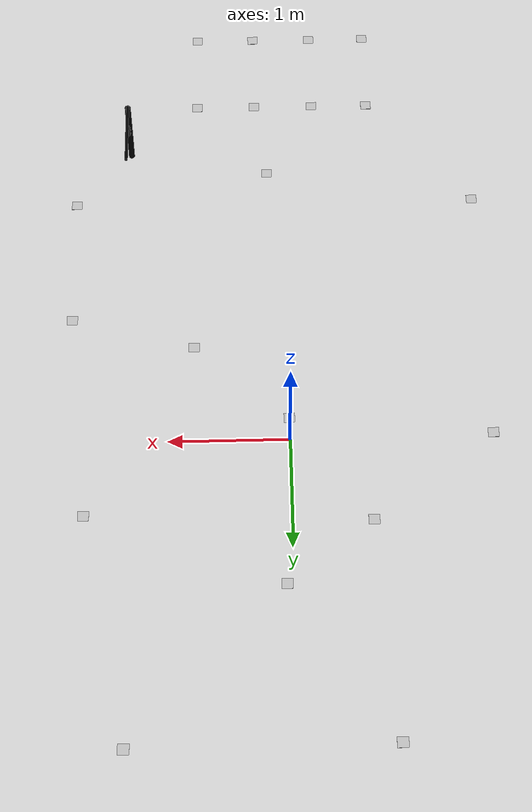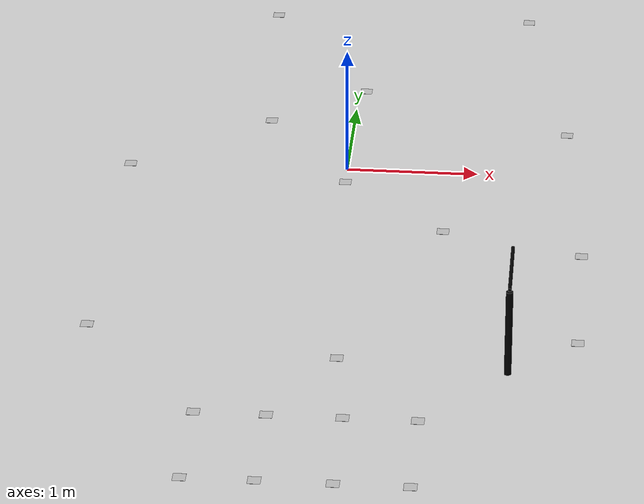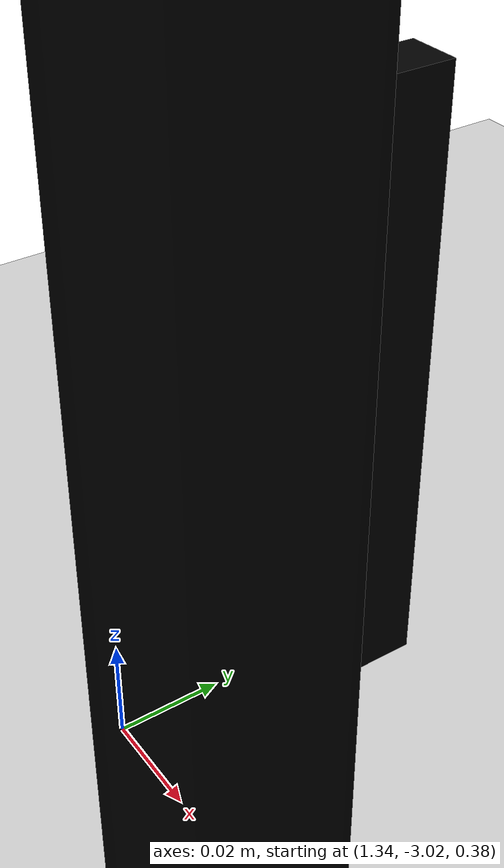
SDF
<?xml version="1.0" ?>
<sdf version="1.4">
  <world name="default">
    <physics type="ode">
      <max_step_size>0.001</max_step_size>  <!-- 减小时间步长，提升计算精度 -->
      <solver>
        <iters>100</iters>  <!-- 增加迭代次数，增强动力学解算稳定性 -->
        <sor>1.4</sor>      <!-- 松弛因子，加快收敛速度 -->
      </solver>
    </physics>
    <scene>
      <shadows>0</shadows>
    </scene>
    <include>
      <uri>model://ground_plane</uri>
	  <pose frame=''>0 0 0.0005 0 0 0 </pose>
    </include>
    <include>
      <uri>model://sun</uri>
    </include>

    <model name="cantilevered_traffic">
      <plugin name="traffic_light_plugin" filename="libgazebo_traffic_light.so" />
      <include>
        <name>cantilevered_light</name>
        <uri>model://cantilevered_light</uri>
        <static>false</static>
        <pose>1.343 -3 -2.9 0 0 3.14</pose>
      </include>
    </model>

    <model name='tagcode1'>
	<static>1</static>
	<link name='link'>
		<visual name='visual'>
		<cast_shadows>1</cast_shadows>
		<geometry>
		<box>
		<size> 0.09 0.09 0.001</size>
		</box>
		</geometry>
		<material>
		<script>
			<uri>model://tagcode/materials/scripts</uri>
			<uri>model://tagcode/materials/textures</uri>
			<name>tagcode1</name>
		</script>
		</material>
		</visual>
		<self_collide>0</self_collide>
		<kinematic>0</kinematic>
	</link>
	<pose frame=''>-0.781399 -4.420120 0.005 0 0 0 </pose>
    </model>
    <model name='tagcode2'>
	<static>1</static>
	<link name='link'>
		<visual name='visual'>
		<cast_shadows>1</cast_shadows>
		<geometry>
		<box>
		<size> 0.09 0.09 0.001</size>
		</box>
		</geometry>
		<material>
		<script>
			<uri>model://tagcode/materials/scripts</uri>
			<uri>model://tagcode/materials/textures</uri>
			<name>tagcode2</name>
		</script>
		</material>
		</visual>
		<self_collide>0</self_collide>
		<kinematic>0</kinematic>
	</link>
	<pose frame=''>-0.281618 -4.420120 0.005 0 0 0 </pose>
    </model>
    <model name='tagcode3'>
	<static>1</static>
	<link name='link'>
		<visual name='visual'>
		<cast_shadows>1</cast_shadows>
		<geometry>
		<box>
		<size> 0.09 0.09 0.001</size>
		</box>
		</geometry>
		<material>
		<script>
			<uri>model://tagcode/materials/scripts</uri>
			<uri>model://tagcode/materials/textures</uri>
			<name>tagcode3</name>
		</script>
		</material>
		</visual>
		<self_collide>0</self_collide>
		<kinematic>0</kinematic>
	</link>
	<pose frame=''>0.242152 -4.420120 0.005 0 0 0 </pose>
    </model>
    <model name='tagcode4'>
	<static>1</static>
	<link name='link'>
		<visual name='visual'>
		<cast_shadows>1</cast_shadows>
		<geometry>
		<box>
		<size> 0.09 0.09 0.001</size>
		</box>
		</geometry>
		<material>
		<script>
			<uri>model://tagcode/materials/scripts</uri>
			<uri>model://tagcode/materials/textures</uri>
			<name>tagcode4</name>
		</script>
		</material>
		</visual>
		<self_collide>0</self_collide>
		<kinematic>0</kinematic>
	</link>
	<pose frame=''>0.756597 -4.420120 0.005 0 0 0 </pose>
    </model>
    <model name='tagcode5'>
	<static>1</static>
	<link name='link'>
		<visual name='visual'>
		<cast_shadows>1</cast_shadows>
		<geometry>
		<box>
		<size> 0.09 0.09 0.001</size>
		</box>
		</geometry>
		<material>
		<script>
			<uri>model://tagcode/materials/scripts</uri>
			<uri>model://tagcode/materials/textures</uri>
			<name>tagcode5</name>
		</script>
		</material>
		</visual>
		<self_collide>0</self_collide>
		<kinematic>0</kinematic>
	</link>
	<pose frame=''>-0.781399 -3.595979 0.005 0 0 0 </pose>
    </model>
    <model name='tagcode6'>
	<static>1</static>
	<link name='link'>
		<visual name='visual'>
		<cast_shadows>1</cast_shadows>
		<geometry>
		<box>
		<size> 0.09 0.09 0.001</size>
		</box>
		</geometry>
		<material>
		<script>
			<uri>model://tagcode/materials/scripts</uri>
			<uri>model://tagcode/materials/textures</uri>
			<name>tagcode6</name>
		</script>
		</material>
		</visual>
		<self_collide>0</self_collide>
		<kinematic>0</kinematic>
	</link>
	<pose frame=''>-0.281618 -3.595979 0.005 0 0 0 </pose>
    </model>
    <model name='tagcode7'>
	<static>1</static>
	<link name='link'>
		<visual name='visual'>
		<cast_shadows>1</cast_shadows>
		<geometry>
		<box>
		<size> 0.09 0.09 0.001</size>
		</box>
		</geometry>
		<material>
		<script>
			<uri>model://tagcode/materials/scripts</uri>
			<uri>model://tagcode/materials/textures</uri>
			<name>tagcode7</name>
		</script>
		</material>
		</visual>
		<self_collide>0</self_collide>
		<kinematic>0</kinematic>
	</link>
	<pose frame=''>0.242152 -3.595979 0.005 0 0 0 </pose>
    </model>
    <model name='tagcode8'>
	<static>1</static>
	<link name='link'>
		<visual name='visual'>
		<cast_shadows>1</cast_shadows>
		<geometry>
		<box>
		<size> 0.09 0.09 0.001</size>
		</box>
		</geometry>
		<material>
		<script>
			<uri>model://tagcode/materials/scripts</uri>
			<uri>model://tagcode/materials/textures</uri>
			<name>tagcode8</name>
		</script>
		</material>
		</visual>
		<self_collide>0</self_collide>
		<kinematic>0</kinematic>
	</link>
	<pose frame=''>0.756597 -3.595979 0.005 0 0 0 </pose>
    </model>
    <model name='tagcode9'>
	<static>1</static>
	<link name='link'>
		<visual name='visual'>
		<cast_shadows>1</cast_shadows>
		<geometry>
		<box>
		<size> 0.09 0.09 0.001</size>
		</box>
		</geometry>
		<material>
		<script>
			<uri>model://tagcode/materials/scripts</uri>
			<uri>model://tagcode/materials/textures</uri>
			<name>tagcode9</name>
		</script>
		</material>
		</visual>
		<self_collide>0</self_collide>
		<kinematic>0</kinematic>
	</link>
	<pose frame=''>0.140740 -2.811872 0.005 0 0 0 </pose>
    </model>
    <model name='tagcode10'>
	<static>1</static>
	<link name='link'>
		<visual name='visual'>
		<cast_shadows>1</cast_shadows>
		<geometry>
		<box>
		<size> 0.09 0.09 0.001</size>
		</box>
		</geometry>
		<material>
		<script>
			<uri>model://tagcode/materials/scripts</uri>
			<uri>model://tagcode/materials/textures</uri>
			<name>tagcode10</name>
		</script>
		</material>
		</visual>
		<self_collide>0</self_collide>
		<kinematic>0</kinematic>
	</link>
	<pose frame=''>1.819617 -2.478172 0.005 0 0 0 </pose>
    </model>
    <model name='tagcode11'>
	<static>1</static>
	<link name='link'>
		<visual name='visual'>
		<cast_shadows>1</cast_shadows>
		<geometry>
		<box>
		<size> 0.09 0.09 0.001</size>
		</box>
		</geometry>
		<material>
		<script>
			<uri>model://tagcode/materials/scripts</uri>
			<uri>model://tagcode/materials/textures</uri>
			<name>tagcode11</name>
		</script>
		</material>
		</visual>
		<self_collide>0</self_collide>
		<kinematic>0</kinematic>
	</link>
	<pose frame=''>-1.668067 -2.478172 0.005 0 0 0 </pose>
    </model>
    <model name='tagcode12'>
	<static>1</static>
	<link name='link'>
		<visual name='visual'>
		<cast_shadows>1</cast_shadows>
		<geometry>
		<box>
		<size> 0.09 0.09 0.001</size>
		</box>
		</geometry>
		<material>
		<script>
			<uri>model://tagcode/materials/scripts</uri>
			<uri>model://tagcode/materials/textures</uri>
			<name>tagcode12</name>
		</script>
		</material>
		</visual>
		<self_collide>0</self_collide>
		<kinematic>0</kinematic>
	</link>
	<pose frame=''>0.001192 -0.212506 0.005 0 0 0 </pose>
    </model>
    <model name='tagcode13'>
	<static>1</static>
	<link name='link'>
		<visual name='visual'>
		<cast_shadows>1</cast_shadows>
		<geometry>
		<box>
		<size> 0.09 0.09 0.001</size>
		</box>
		</geometry>
		<material>
		<script>
			<uri>model://tagcode/materials/scripts</uri>
			<uri>model://tagcode/materials/textures</uri>
			<name>tagcode13</name>
		</script>
		</material>
		</visual>
		<self_collide>0</self_collide>
		<kinematic>0</kinematic>
	</link>
	<pose frame=''>-1.668067 -0.037187 0.005 0 0 0 </pose>
    </model>
    <model name='tagcode14'>
	<static>1</static>
	<link name='link'>
		<visual name='visual'>
		<cast_shadows>1</cast_shadows>
		<geometry>
		<box>
		<size> 0.09 0.09 0.001</size>
		</box>
		</geometry>
		<material>
		<script>
			<uri>model://tagcode/materials/scripts</uri>
			<uri>model://tagcode/materials/textures</uri>
			<name>tagcode14</name>
		</script>
		</material>
		</visual>
		<self_collide>0</self_collide>
		<kinematic>0</kinematic>
	</link>
	<pose frame=''>0.053529 1.320189 0.005 0 0 0 </pose>
    </model>
    <model name='tagcode15'>
	<static>1</static>
	<link name='link'>
		<visual name='visual'>
		<cast_shadows>1</cast_shadows>
		<geometry>
		<box>
		<size> 0.09 0.09 0.001</size>
		</box>
		</geometry>
		<material>
		<script>
			<uri>model://tagcode/materials/scripts</uri>
			<uri>model://tagcode/materials/textures</uri>
			<name>tagcode15</name>
		</script>
		</material>
		</visual>
		<self_collide>0</self_collide>
		<kinematic>0</kinematic>
	</link>
	<pose frame=''>-0.773688 2.666689 0.005 0 0 0 </pose>
    </model>
    <model name='tagcode16'>
	<static>1</static>
	<link name='link'>
		<visual name='visual'>
		<cast_shadows>1</cast_shadows>
		<geometry>
		<box>
		<size> 0.09 0.09 0.001</size>
		</box>
		</geometry>
		<material>
		<script>
			<uri>model://tagcode/materials/scripts</uri>
			<uri>model://tagcode/materials/textures</uri>
			<name>tagcode16</name>
		</script>
		</material>
		</visual>
		<self_collide>0</self_collide>
		<kinematic>0</kinematic>
	</link>
	<pose frame=''>1.307155 2.679879 0.005 0 0 0 </pose>
    </model>
    <model name='tagcode17'>
	<static>1</static>
	<link name='link'>
		<visual name='visual'>
		<cast_shadows>1</cast_shadows>
		<geometry>
		<box>
		<size> 0.09 0.09 0.001</size>
		</box>
		</geometry>
		<material>
		<script>
			<uri>model://tagcode/materials/scripts</uri>
			<uri>model://tagcode/materials/textures</uri>
			<name>tagcode17</name>
		</script>
		</material>
		</visual>
		<self_collide>0</self_collide>
		<kinematic>0</kinematic>
	</link>
	<pose frame=''>1.819617 -1.230157 0.005 0 0 0 </pose>
    </model>
    <model name='tagcode18'>
	<static>1</static>
	<link name='link'>
		<visual name='visual'>
		<cast_shadows>1</cast_shadows>
		<geometry>
		<box>
		<size> 0.09 0.09 0.001</size>
		</box>
		</geometry>
		<material>
		<script>
			<uri>model://tagcode/materials/scripts</uri>
			<uri>model://tagcode/materials/textures</uri>
			<name>tagcode18</name>
		</script>
		</material>
		</visual>
		<self_collide>0</self_collide>
		<kinematic>0</kinematic>
	</link>
	<pose frame=''>0.784726 -0.932472 0.005 0 0 0 </pose>
    </model>
    <model name='tagcode19'>
	<static>1</static>
	<link name='link'>
		<visual name='visual'>
		<cast_shadows>1</cast_shadows>
		<geometry>
		<box>
		<size> 0.09 0.09 0.001</size>
		</box>
		</geometry>
		<material>
		<script>
			<uri>model://tagcode/materials/scripts</uri>
			<uri>model://tagcode/materials/textures</uri>
			<name>tagcode19</name>
		</script>
		</material>
		</visual>
		<self_collide>0</self_collide>
		<kinematic>0</kinematic>
	</link>
	<pose frame=''>1.668139 0.682177 0.005 0 0 0 </pose>
    </model>
    <model name='tagcode20'>
	<static>1</static>
	<link name='link'>
		<visual name='visual'>
		<cast_shadows>1</cast_shadows>
		<geometry>
		<box>
		<size> 0.09 0.09 0.001</size>
		</box>
		</geometry>
		<material>
		<script>
			<uri>model://tagcode/materials/scripts</uri>
			<uri>model://tagcode/materials/textures</uri>
			<name>tagcode20</name>
		</script>
		</material>
		</visual>
		<self_collide>0</self_collide>
		<kinematic>0</kinematic>
	</link>
	<pose frame=''>-0.652891 0.75954 0.005 0 0 0 </pose>
    </model>

  </world>
</sdf>

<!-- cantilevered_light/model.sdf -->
<sdf version="1.7">
  <model name="cantilevered_light">
    <static>false</static>

    <link name="base">
      <gravity>false</gravity>
      <pose>0 0 0 0 0 0</pose>
      <visual name="visual">
        <pose>0 0 3.275 0 0 0</pose>
        <geometry>
          <cylinder>
            <radius>0.025</radius>
            <length>0.655</length>
          </cylinder>
        </geometry>
        <material>
          <ambient>0 0 0 1</ambient>
          <diffuse>0 0 0 1</diffuse>
          <specular>0 0 0 1</specular>
        </material>
      </visual>
      <collision name="collision">
        <pose>0 0 3.275 0 0 0</pose>
        <geometry>
          <cylinder>
            <radius>0.025</radius>
            <length>0.655</length>
          </cylinder>
        </geometry>
      </collision>
    </link>

    <link name="cross_beam">
      <gravity>false</gravity>
      <pose>0 2.7 3.615 1.5707 0 0</pose>
      <visual name="visual">
        <pose>0 0 3.0 0 0 0</pose>
        <geometry>
          <cylinder>
            <radius>0.0125</radius>
            <length>0.6</length>
          </cylinder>
        </geometry>
        <material>
          <ambient>0 0 0 1</ambient>
          <diffuse>0 0 0 1</diffuse>
          <specular>0 0 0 1</specular>
        </material>
      </visual>
      <collision name="collision">
        <pose>0 0 3.0 0 0 0</pose>
        <geometry>
          <cylinder>
            <radius>0.0125</radius>
            <length>0.6</length>
          </cylinder>
        </geometry>
      </collision>
    </link>

    <frame name="base_frame" attached_to="base">
    </frame>

    <frame name="cross_beam_frame">
      <pose relative_to="base_frame">0 2.7 3.615 1.5707 0 0</pose>
    </frame>

    <include>
      <name>traffic_light</name>
      <uri>model://gazebo_traffic_light</uri>
      <static>false</static>
      <pose relative_to="cross_beam_frame">0 -0.535 2.8 -1.5707 0 0</pose>
    </include>

    <joint name="cross_beam_fixed" type="fixed" >
      <parent>base</parent>
      <child>cross_beam</child>
    </joint>

    <joint name="light_mount" type="fixed" >
      <parent>cross_beam</parent>
      <child>traffic_light::light_fixture</child>
    </joint>
  </model>
</sdf>

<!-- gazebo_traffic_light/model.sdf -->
<sdf version="1.7">
  <model name="gazebo_traffic_light">
    <static>false</static>

    <link name="light_fixture">
      <kinematic>1</kinematic>
      <gravity>false</gravity>
      <pose>0 0 0.525 1.57 0 0</pose>
      <visual name="visual">
        <pose>0 0 0.535 0 0 0</pose>
        <geometry>
          <box>
            <size>0.01 0.06 0.12</size>
          </box>
        </geometry>
        <material>
          <ambient>0 0 0 1</ambient>
          <diffuse>0 0 0 1</diffuse>
          <specular>0 0 0 1</specular>
        </material>
      </visual>
      <collision name="collision">
        <pose>0 0 0.535 0 0 0</pose>
        <geometry>
          <box>
            <size>0.01 0.06 0.12</size>
          </box>
        </geometry>
      </collision>
    </link>

    <link name="left_off">
      <gravity>false</gravity>
      <kinematic>1</kinematic>
      <pose>0 -0.57 0.525 0 1.5707 0</pose>

      <visual name="visual">
        <geometry>
          <cylinder>
            <radius>0.015</radius>
            <length>0.005</length>
          </cylinder>
        </geometry>
        <material>
          <ambient>0 0 0 1</ambient>
          <diffuse>0 0 0 1</diffuse>
          <specular>0 0 0 1</specular>
          <emissive>1 0 0 1</emissive>
        </material>
      </visual>
    </link>

    <link name="left_on">
      <gravity>false</gravity>
      <kinematic>1</kinematic>
      <pose>0.01 -0.57 0.525 0 1.5707 0</pose>

      <visual name="visual">
        <geometry>
          <cylinder>
            <radius>0.015</radius>
            <length>0.0002</length>
          </cylinder>
        </geometry>
        <material>
          <ambient>0 0 0 1</ambient>
          <diffuse>0 0 0 1</diffuse>
          <specular>0 0 0 1</specular>
          <emissive>0 1 0 1</emissive>
        </material>
      </visual>
    </link>

    <link name="middle_off">
      <gravity>false</gravity>
      <kinematic>1</kinematic>
      <pose>0.01 -0.53125 0.525 0 1.5707 0</pose>

      <visual name="visual">
        <geometry>
          <cylinder>
            <radius>0.015</radius>
            <length>0.005</length>
          </cylinder>
        </geometry>
        <material>
          <ambient>0 0 0 1</ambient>
          <diffuse>0 0 0 1</diffuse>
          <specular>0 0 0 1</specular>
          <emissive>1 0 0 1</emissive>
        </material>
      </visual>
    </link>

    <link name="middle_on">
      <gravity>false</gravity>
      <kinematic>1</kinematic>
      <pose>0 -0.53125 0.525 0 1.5707 0</pose>

      <visual name="visual">
        <geometry>
          <cylinder>
            <radius>0.015</radius>
            <length>0.0002</length>
          </cylinder>
        </geometry>
        <material>
          <ambient>0 0 0 1</ambient>
          <diffuse>0 0 0 1</diffuse>
          <specular>0 0 0 1</specular>
          <emissive>0 1 0 1</emissive>
        </material>
      </visual>
    </link>

    <link name="right_off">
      <gravity>false</gravity>
      <kinematic>1</kinematic>
      <pose>0.01 -0.49 0.525 0 1.5707 0</pose>

      <visual name="visual">
        <geometry>
          <cylinder>
            <radius>0.015</radius>
            <length>0.005</length>
          </cylinder>
        </geometry>
        <material>
          <ambient>0 0 0 1</ambient>
          <diffuse>0 0 0 1</diffuse>
          <specular>0 0 0 1</specular>
          <emissive>1 0 0 1</emissive>
        </material>
      </visual>
    </link>

    <link name="right_on">
      <gravity>false</gravity>
      <kinematic>1</kinematic>
      <pose>0 -0.49 0.525 0 1.5707 0</pose>

      <visual name="visual">
        <geometry>
          <cylinder>
            <radius>0.015</radius>
            <length>0.0002</length>
          </cylinder>
        </geometry>
        <material>
          <ambient>0 0 0 1</ambient>
          <diffuse>0 0 0 1</diffuse>
          <specular>0 0 0 1</specular>
          <emissive>0 1 0 1</emissive>
        </material>
      </visual>
    </link>
    <joint name="left_base" type="fixed" >
      <parent>light_fixture</parent>
      <child>left_off</child>
      <child>left_on</child>
    </joint>
    <joint name="middle_base" type="fixed" >
      <parent>light_fixture</parent>
      <child>middle_off</child>
      <child>middle_on</child>
    </joint>
    <joint name="right_base" type="fixed" >
      <parent>light_fixture</parent>
      <child>right_off</child>
      <child>right_on</child>
    </joint>
  </model>
</sdf>
